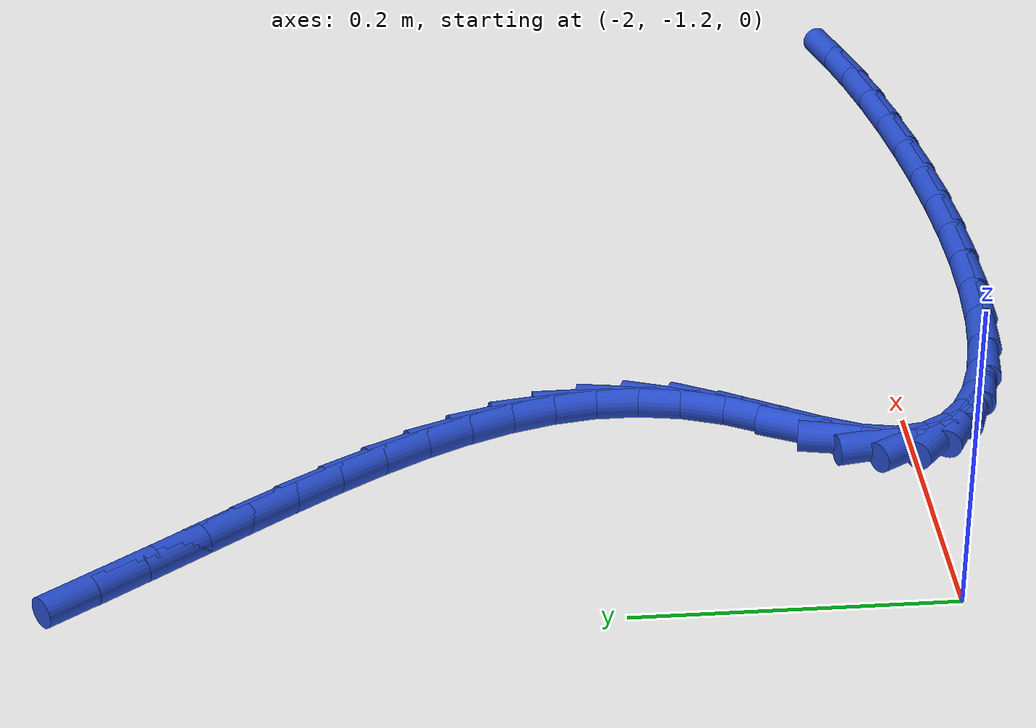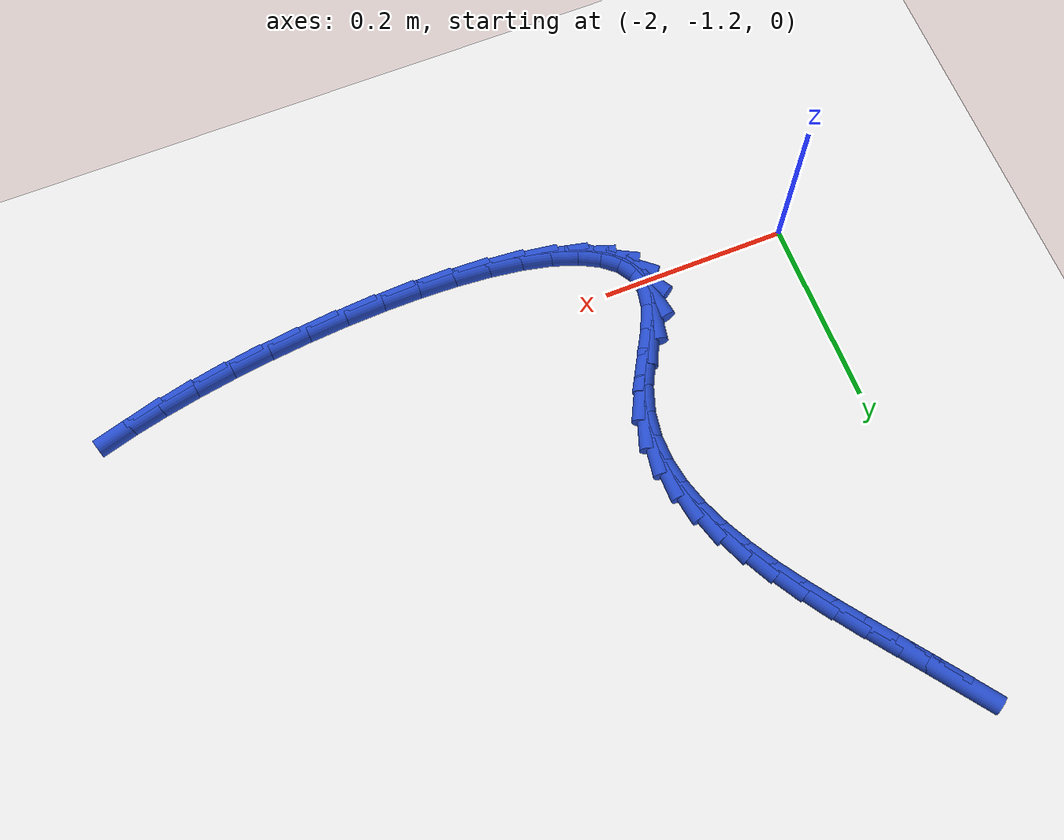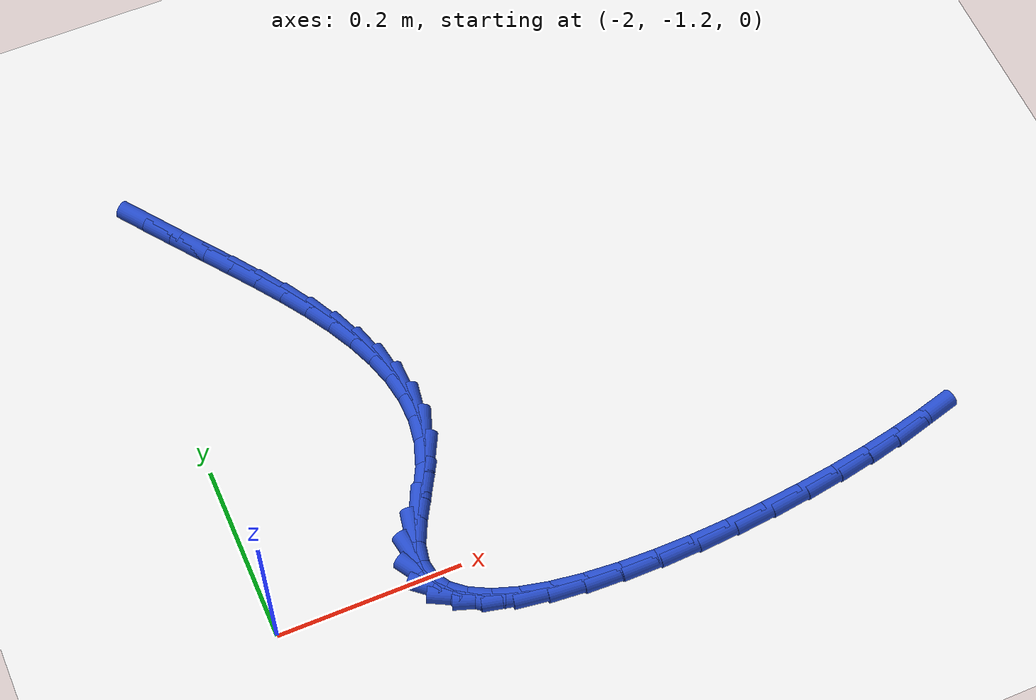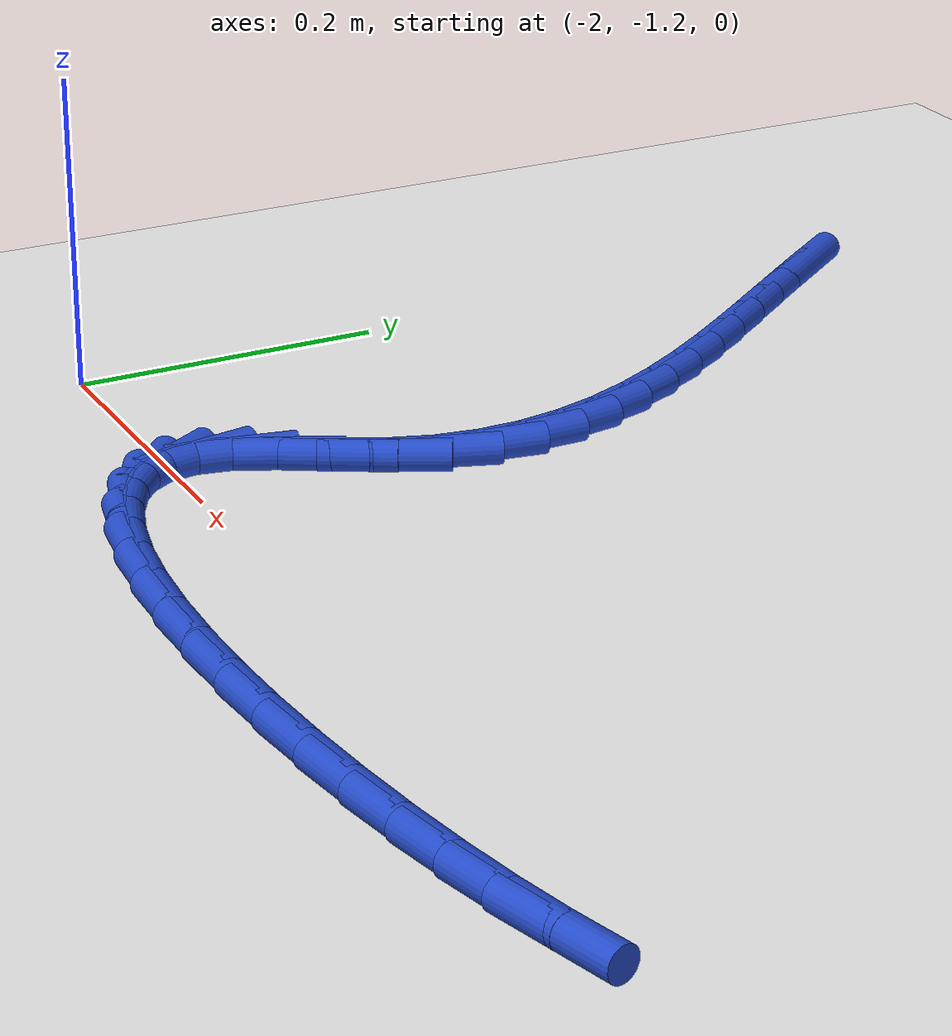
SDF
<sdf version="1.6">
 <world name="default">
  <model name="ground_plane">
   <static>1</static>
   <link name="link">
    <collision name="collision">
     <geometry><plane><normal>0 0 1</normal><size>100 100</size></plane></geometry>
     <surface><friction><ode><mu>100</mu><mu2>50</mu2></ode></friction></surface>
    </collision>
    <visual name="visual">
     <cast_shadows>0</cast_shadows>
     <geometry><plane><normal>0 0 1</normal><size>100 100</size></plane></geometry>
     <material>
      <script><uri>file://media/materials/scripts/gazebo.material</uri><name>Gazebo/WhiteGlow</name></script>
     </material>
    </visual>
   </link>
  </model>
  <model name="line">
   <link name="link_181">
    <pose>-1.9571759766954033 -0.6896840299619902 0.01 0 1.57 -0.9402856474140653</pose>
    <collision name="collision">
     <geometry><cylinder><radius>0.01</radius><length>0.08</length></cylinder></geometry>
    </collision>
    <visual name="visual">
     <material>
      <script><name>Gazebo/Blue</name><uri>file://media/materials/scripts/gazebo.material</uri></script>
     </material>
     <geometry><cylinder><radius>0.01</radius><length>0.08</length></cylinder></geometry>
    </visual>
   </link>
   <link name="link_182">
    <pose>-1.9364835027969185 -0.7180338776188245 0.01 0 1.57 -0.9333513157014989</pose>
    <collision name="collision">
     <geometry><cylinder><radius>0.01</radius><length>0.08</length></cylinder></geometry>
    </collision>
    <visual name="visual">
     <material>
      <script><name>Gazebo/Blue</name><uri>file://media/materials/scripts/gazebo.material</uri></script>
     </material>
     <geometry><cylinder><radius>0.01</radius><length>0.08</length></cylinder></geometry>
    </visual>
   </link>
   <link name="link_183">
    <pose>-1.9154104815299753 -0.7464886303026854 0.01 0 1.57 -0.9305539144740665</pose>
    <collision name="collision">
     <geometry><cylinder><radius>0.01</radius><length>0.08</length></cylinder></geometry>
    </collision>
    <visual name="visual">
     <material>
      <script><name>Gazebo/Blue</name><uri>file://media/materials/scripts/gazebo.material</uri></script>
     </material>
     <geometry><cylinder><radius>0.01</radius><length>0.08</length></cylinder></geometry>
    </visual>
   </link>
   <link name="link_184">
    <pose>-1.894251475675145 -0.7748930045466539 0.01 0 1.57 -0.9388156703922137</pose>
    <collision name="collision">
     <geometry><cylinder><radius>0.01</radius><length>0.08</length></cylinder></geometry>
    </collision>
    <visual name="visual">
     <material>
      <script><name>Gazebo/Blue</name><uri>file://media/materials/scripts/gazebo.material</uri></script>
     </material>
     <geometry><cylinder><radius>0.01</radius><length>0.08</length></cylinder></geometry>
    </visual>
   </link>
   <link name="link_185">
    <pose>-1.8734875354176868 -0.8032531266470022 0.01 0 1.57 -0.958602631988399</pose>
    <collision name="collision">
     <geometry><cylinder><radius>0.01</radius><length>0.08</length></cylinder></geometry>
    </collision>
    <visual name="visual">
     <material>
      <script><name>Gazebo/Blue</name><uri>file://media/materials/scripts/gazebo.material</uri></script>
     </material>
     <geometry><cylinder><radius>0.01</radius><length>0.08</length></cylinder></geometry>
    </visual>
   </link>
   <link name="link_186">
    <pose>-1.8535999755710697 -0.8315753519426938 0.01 0 1.57 -0.9909273854989642</pose>
    <collision name="collision">
     <geometry><cylinder><radius>0.01</radius><length>0.08</length></cylinder></geometry>
    </collision>
    <visual name="visual">
     <material>
      <script><name>Gazebo/Blue</name><uri>file://media/materials/scripts/gazebo.material</uri></script>
     </material>
     <geometry><cylinder><radius>0.01</radius><length>0.08</length></cylinder></geometry>
    </visual>
   </link>
   <link name="link_187">
    <pose>-1.8350701109487644 -0.859866035772692 0.01 0 1.57 -1.0373893543148536</pose>
    <collision name="collision">
     <geometry><cylinder><radius>0.01</radius><length>0.08</length></cylinder></geometry>
    </collision>
    <visual name="visual">
     <material>
      <script><name>Gazebo/Blue</name><uri>file://media/materials/scripts/gazebo.material</uri></script>
     </material>
     <geometry><cylinder><radius>0.01</radius><length>0.08</length></cylinder></geometry>
    </visual>
   </link>
   <link name="link_188">
    <pose>-1.8183792563642422 -0.888131533475961 0.01 0 1.57 -1.10017217848193</pose>
    <collision name="collision">
     <geometry><cylinder><radius>0.01</radius><length>0.08</length></cylinder></geometry>
    </collision>
    <visual name="visual">
     <material>
      <script><name>Gazebo/Blue</name><uri>file://media/materials/scripts/gazebo.material</uri></script>
     </material>
     <geometry><cylinder><radius>0.01</radius><length>0.08</length></cylinder></geometry>
    </visual>
   </link>
   <link name="link_189">
    <pose>-1.8040087266309732 -0.9163782003914639 0.01 0 1.57 -1.1819152566505324</pose>
    <collision name="collision">
     <geometry><cylinder><radius>0.01</radius><length>0.08</length></cylinder></geometry>
    </collision>
    <visual name="visual">
     <material>
      <script><name>Gazebo/Blue</name><uri>file://media/materials/scripts/gazebo.material</uri></script>
     </material>
     <geometry><cylinder><radius>0.01</radius><length>0.08</length></cylinder></geometry>
    </visual>
   </link>
   <link name="link_190">
    <pose>-1.7924398365624272 -0.9446123918581657 0.01 0 1.57 -1.2852809449808613</pose>
    <collision name="collision">
     <geometry><cylinder><radius>0.01</radius><length>0.08</length></cylinder></geometry>
    </collision>
    <visual name="visual">
     <material>
      <script><name>Gazebo/Blue</name><uri>file://media/materials/scripts/gazebo.material</uri></script>
     </material>
     <geometry><cylinder><radius>0.01</radius><length>0.08</length></cylinder></geometry>
    </visual>
   </link>
   <link name="link_191">
    <pose>-1.7841539009720764 -0.9728404632150282 0.01 0 1.57 -1.4119636231495345</pose>
    <collision name="collision">
     <geometry><cylinder><radius>0.01</radius><length>0.08</length></cylinder></geometry>
    </collision>
    <visual name="visual">
     <material>
      <script><name>Gazebo/Blue</name><uri>file://media/materials/scripts/gazebo.material</uri></script>
     </material>
     <geometry><cylinder><radius>0.01</radius><length>0.08</length></cylinder></geometry>
    </visual>
   </link>
   <link name="link_192">
    <pose>-1.7796322346733895 -1.0010687698010154 0.01 0 1.57 -1.5610185899117568</pose>
    <collision name="collision">
     <geometry><cylinder><radius>0.01</radius><length>0.08</length></cylinder></geometry>
    </collision>
    <visual name="visual">
     <material>
      <script><name>Gazebo/Blue</name><uri>file://media/materials/scripts/gazebo.material</uri></script>
     </material>
     <geometry><cylinder><radius>0.01</radius><length>0.08</length></cylinder></geometry>
    </visual>
   </link>
   <link name="link_193">
    <pose>-1.7793561524798382 -1.0293036669550917 0.01 0 1.57 1.414518070737788</pose>
    <collision name="collision">
     <geometry><cylinder><radius>0.01</radius><length>0.08</length></cylinder></geometry>
    </collision>
    <visual name="visual">
     <material>
      <script><name>Gazebo/Blue</name><uri>file://media/materials/scripts/gazebo.material</uri></script>
     </material>
     <geometry><cylinder><radius>0.01</radius><length>0.08</length></cylinder></geometry>
    </visual>
   </link>
   <link name="link_194">
    <pose>-1.7838069692048926 -1.05755151001622 0.01 0 1.57 1.241530102120834</pose>
    <collision name="collision">
     <geometry><cylinder><radius>0.01</radius><length>0.08</length></cylinder></geometry>
    </collision>
    <visual name="visual">
     <material>
      <script><name>Gazebo/Blue</name><uri>file://media/materials/scripts/gazebo.material</uri></script>
     </material>
     <geometry><cylinder><radius>0.01</radius><length>0.08</length></cylinder></geometry>
    </visual>
   </link>
   <link name="link_195">
    <pose>-1.793465999662023 -1.0858186543233646 0.01 0 1.57 1.0938204760194308</pose>
    <collision name="collision">
     <geometry><cylinder><radius>0.01</radius><length>0.08</length></cylinder></geometry>
    </collision>
    <visual name="visual">
     <material>
      <script><name>Gazebo/Blue</name><uri>file://media/materials/scripts/gazebo.material</uri></script>
     </material>
     <geometry><cylinder><radius>0.01</radius><length>0.08</length></cylinder></geometry>
    </visual>
   </link>
   <link name="link_196">
    <pose>-1.8080038040310418 -1.1139505464873154 0.01 0 1.57 1.049687931808075</pose>
    <collision name="collision">
     <geometry><cylinder><radius>0.01</radius><length>0.08</length></cylinder></geometry>
    </collision>
    <visual name="visual">
     <material>
      <script><name>Gazebo/Blue</name><uri>file://media/materials/scripts/gazebo.material</uri></script>
     </material>
     <geometry><cylinder><radius>0.01</radius><length>0.08</length></cylinder></geometry>
    </visual>
   </link>
   <link name="link_197">
    <pose>-1.8235869186113334 -1.1410971970366228 0.01 0 1.57 1.1301154489797067</pose>
    <collision name="collision">
     <geometry><cylinder><radius>0.01</radius><length>0.08</length></cylinder></geometry>
    </collision>
    <visual name="visual">
     <material>
      <script><name>Gazebo/Blue</name><uri>file://media/materials/scripts/gazebo.material</uri></script>
     </material>
     <geometry><cylinder><radius>0.01</radius><length>0.08</length></cylinder></geometry>
    </visual>
   </link>
   <link name="link_198">
    <pose>-1.8354355241291955 -1.1662207965234002 0.01 0 1.57 1.3774996477697075</pose>
    <collision name="collision">
     <geometry><cylinder><radius>0.01</radius><length>0.08</length></cylinder></geometry>
    </collision>
    <visual name="visual">
     <material>
      <script><name>Gazebo/Blue</name><uri>file://media/materials/scripts/gazebo.material</uri></script>
     </material>
     <geometry><cylinder><radius>0.01</radius><length>0.08</length></cylinder></geometry>
    </visual>
   </link>
   <link name="link_199">
    <pose>-1.8397974541733753 -1.1885050305308484 0.01 0 1.57 -1.4045845732287165</pose>
    <collision name="collision">
     <geometry><cylinder><radius>0.01</radius><length>0.08</length></cylinder></geometry>
    </collision>
    <visual name="visual">
     <material>
      <script><name>Gazebo/Blue</name><uri>file://media/materials/scripts/gazebo.material</uri></script>
     </material>
     <geometry><cylinder><radius>0.01</radius><length>0.08</length></cylinder></geometry>
    </visual>
   </link>
   <link name="link_200">
    <pose>-1.8365414144697543 -1.2079140079602888 0.01 0 1.57 -1.02131898829772</pose>
    <collision name="collision">
     <geometry><cylinder><radius>0.01</radius><length>0.08</length></cylinder></geometry>
    </collision>
    <visual name="visual">
     <material>
      <script><name>Gazebo/Blue</name><uri>file://media/materials/scripts/gazebo.material</uri></script>
     </material>
     <geometry><cylinder><radius>0.01</radius><length>0.08</length></cylinder></geometry>
    </visual>
   </link>
   <link name="link_201">
    <pose>-1.826333165665852 -1.2245836306466573 0.01 0 1.57 -0.7060995320512266</pose>
    <collision name="collision">
     <geometry><cylinder><radius>0.01</radius><length>0.08</length></cylinder></geometry>
    </collision>
    <visual name="visual">
     <material>
      <script><name>Gazebo/Blue</name><uri>file://media/materials/scripts/gazebo.material</uri></script>
     </material>
     <geometry><cylinder><radius>0.01</radius><length>0.08</length></cylinder></geometry>
    </visual>
   </link>
   <link name="link_202">
    <pose>-1.809838468409188 -1.23864980042489 0.01 0 1.57 -0.4830230130559574</pose>
    <collision name="collision">
     <geometry><cylinder><radius>0.01</radius><length>0.08</length></cylinder></geometry>
    </collision>
    <visual name="visual">
     <material>
      <script><name>Gazebo/Blue</name><uri>file://media/materials/scripts/gazebo.material</uri></script>
     </material>
     <geometry><cylinder><radius>0.01</radius><length>0.08</length></cylinder></geometry>
    </visual>
   </link>
   <link name="link_203">
    <pose>-1.7877230833472808 -1.2502484191299212 0.01 0 1.57 -0.3298252361998992</pose>
    <collision name="collision">
     <geometry><cylinder><radius>0.01</radius><length>0.08</length></cylinder></geometry>
    </collision>
    <visual name="visual">
     <material>
      <script><name>Gazebo/Blue</name><uri>file://media/materials/scripts/gazebo.material</uri></script>
     </material>
     <geometry><cylinder><radius>0.01</radius><length>0.08</length></cylinder></geometry>
    </visual>
   </link>
   <link name="link_204">
    <pose>-1.7606527711276503 -1.2595153885966872 0.01 0 1.57 -0.22177996931687338</pose>
    <collision name="collision">
     <geometry><cylinder><radius>0.01</radius><length>0.08</length></cylinder></geometry>
    </collision>
    <visual name="visual">
     <material>
      <script><name>Gazebo/Blue</name><uri>file://media/materials/scripts/gazebo.material</uri></script>
     </material>
     <geometry><cylinder><radius>0.01</radius><length>0.08</length></cylinder></geometry>
    </visual>
   </link>
   <link name="link_205">
    <pose>-1.729293292397815 -1.2665866106601227 0.01 0 1.57 -0.1422842260019554</pose>
    <collision name="collision">
     <geometry><cylinder><radius>0.01</radius><length>0.08</length></cylinder></geometry>
    </collision>
    <visual name="visual">
     <material>
      <script><name>Gazebo/Blue</name><uri>file://media/materials/scripts/gazebo.material</uri></script>
     </material>
     <geometry><cylinder><radius>0.01</radius><length>0.08</length></cylinder></geometry>
    </visual>
   </link>
   <link name="link_206">
    <pose>-1.6943104078052946 -1.271597987155163 0.01 0 1.57 -0.08119667143622364</pose>
    <collision name="collision">
     <geometry><cylinder><radius>0.01</radius><length>0.08</length></cylinder></geometry>
    </collision>
    <visual name="visual">
     <material>
      <script><name>Gazebo/Blue</name><uri>file://media/materials/scripts/gazebo.material</uri></script>
     </material>
     <geometry><cylinder><radius>0.01</radius><length>0.08</length></cylinder></geometry>
    </visual>
   </link>
   <link name="link_207">
    <pose>-1.6563698779976075 -1.2746854199167432 0.01 0 1.57 -0.03228589101683607</pose>
    <collision name="collision">
     <geometry><cylinder><radius>0.01</radius><length>0.08</length></cylinder></geometry>
    </collision>
    <visual name="visual">
     <material>
      <script><name>Gazebo/Blue</name><uri>file://media/materials/scripts/gazebo.material</uri></script>
     </material>
     <geometry><cylinder><radius>0.01</radius><length>0.08</length></cylinder></geometry>
    </visual>
   </link>
   <link name="link_208">
    <pose>-1.6161374636222725 -1.2759848107797989 0.01 0 1.57 0.008426974873593101</pose>
    <collision name="collision">
     <geometry><cylinder><radius>0.01</radius><length>0.08</length></cylinder></geometry>
    </collision>
    <visual name="visual">
     <material>
      <script><name>Gazebo/Blue</name><uri>file://media/materials/scripts/gazebo.material</uri></script>
     </material>
     <geometry><cylinder><radius>0.01</radius><length>0.08</length></cylinder></geometry>
    </visual>
   </link>
   <link name="link_209">
    <pose>-1.574278925326811 -1.2756320615792653 0.01 0 1.57 0.04362096599898235</pose>
    <collision name="collision">
     <geometry><cylinder><radius>0.01</radius><length>0.08</length></cylinder></geometry>
    </collision>
    <visual name="visual">
     <material>
      <script><name>Gazebo/Blue</name><uri>file://media/materials/scripts/gazebo.material</uri></script>
     </material>
     <geometry><cylinder><radius>0.01</radius><length>0.08</length></cylinder></geometry>
    </visual>
   </link>
   <link name="link_210">
    <pose>-1.5314600237587406 -1.2737630741500776 0.01 0 1.57 0.07522451624215912</pose>
    <collision name="collision">
     <geometry><cylinder><radius>0.01</radius><length>0.08</length></cylinder></geometry>
    </collision>
    <visual name="visual">
     <material>
      <script><name>Gazebo/Blue</name><uri>file://media/materials/scripts/gazebo.material</uri></script>
     </material>
     <geometry><cylinder><radius>0.01</radius><length>0.08</length></cylinder></geometry>
    </visual>
   </link>
   <link name="link_211">
    <pose>-1.4883465195655812 -1.2705137503271715 0.01 0 1.57 0.1047511512703812</pose>
    <collision name="collision">
     <geometry><cylinder><radius>0.01</radius><length>0.08</length></cylinder></geometry>
    </collision>
    <visual name="visual">
     <material>
      <script><name>Gazebo/Blue</name><uri>file://media/materials/scripts/gazebo.material</uri></script>
     </material>
     <geometry><cylinder><radius>0.01</radius><length>0.08</length></cylinder></geometry>
    </visual>
   </link>
   <link name="link_212">
    <pose>-1.445604173394851 -1.2660199919454818 0.01 0 1.57 0.13353068602715196</pose>
    <collision name="collision">
     <geometry><cylinder><radius>0.01</radius><length>0.08</length></cylinder></geometry>
    </collision>
    <visual name="visual">
     <material>
      <script><name>Gazebo/Blue</name><uri>file://media/materials/scripts/gazebo.material</uri></script>
     </material>
     <geometry><cylinder><radius>0.01</radius><length>0.08</length></cylinder></geometry>
    </visual>
   </link>
   <link name="link_213">
    <pose>-1.40389874589407 -1.2604177008399435 0.01 0 1.57 0.16290522827733467</pose>
    <collision name="collision">
     <geometry><cylinder><radius>0.01</radius><length>0.08</length></cylinder></geometry>
    </collision>
    <visual name="visual">
     <material>
      <script><name>Gazebo/Blue</name><uri>file://media/materials/scripts/gazebo.material</uri></script>
     </material>
     <geometry><cylinder><radius>0.01</radius><length>0.08</length></cylinder></geometry>
    </visual>
   </link>
   <link name="link_214">
    <pose>-1.363895997710757 -1.2538427788454927 0.01 0 1.57 0.19445025916139055</pose>
    <collision name="collision">
     <geometry><cylinder><radius>0.01</radius><length>0.08</length></cylinder></geometry>
    </collision>
    <visual name="visual">
     <material>
      <script><name>Gazebo/Blue</name><uri>file://media/materials/scripts/gazebo.material</uri></script>
     </material>
     <geometry><cylinder><radius>0.01</radius><length>0.08</length></cylinder></geometry>
    </visual>
   </link>
   <link name="link_215">
    <pose>-1.3262616894924308 -1.2464311277970639 0.01 0 1.57 0.2300609438068947</pose>
    <collision name="collision">
     <geometry><cylinder><radius>0.01</radius><length>0.08</length></cylinder></geometry>
    </collision>
    <visual name="visual">
     <material>
      <script><name>Gazebo/Blue</name><uri>file://media/materials/scripts/gazebo.material</uri></script>
     </material>
     <geometry><cylinder><radius>0.01</radius><length>0.08</length></cylinder></geometry>
    </visual>
   </link>
   <link name="link_216">
    <pose>-1.291592618991103 -1.2383113663294927 0.01 0 1.57 0.2690514144986299</pose>
    <collision name="collision">
     <geometry><cylinder><radius>0.01</radius><length>0.08</length></cylinder></geometry>
    </collision>
    <visual name="visual">
     <material>
      <script><name>Gazebo/Blue</name><uri>file://media/materials/scripts/gazebo.material</uri></script>
     </material>
     <geometry><cylinder><radius>0.01</radius><length>0.08</length></cylinder></geometry>
    </visual>
   </link>
  </model>
 </world>
</sdf>
